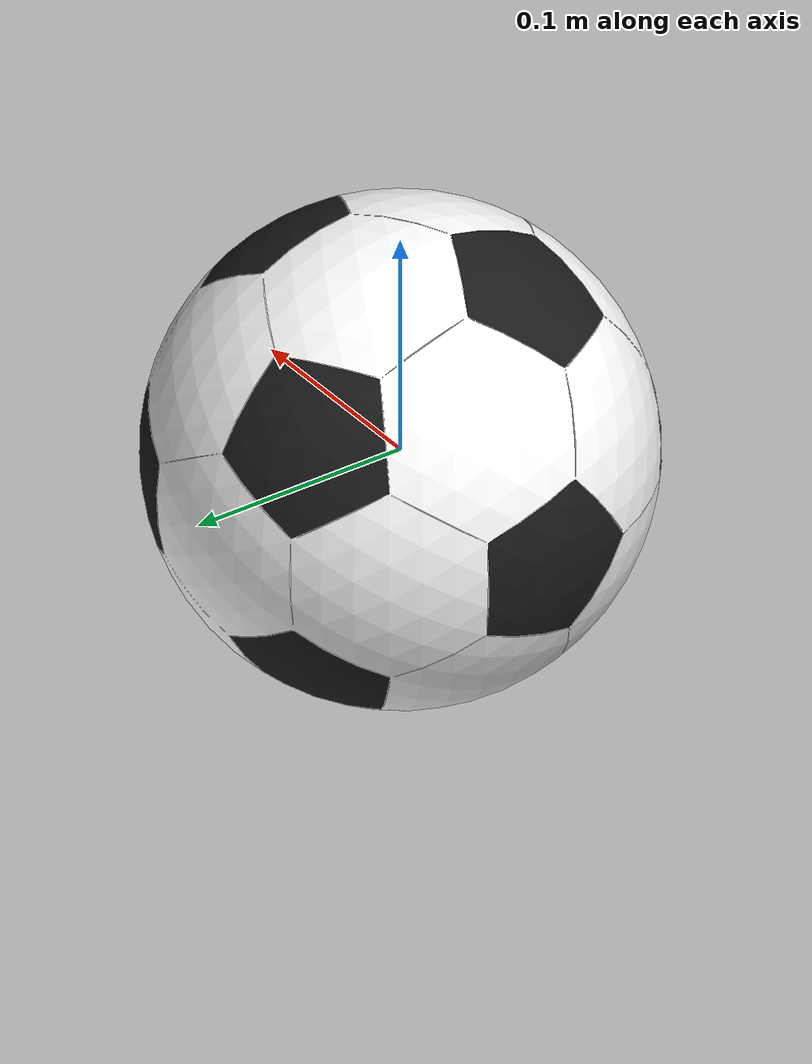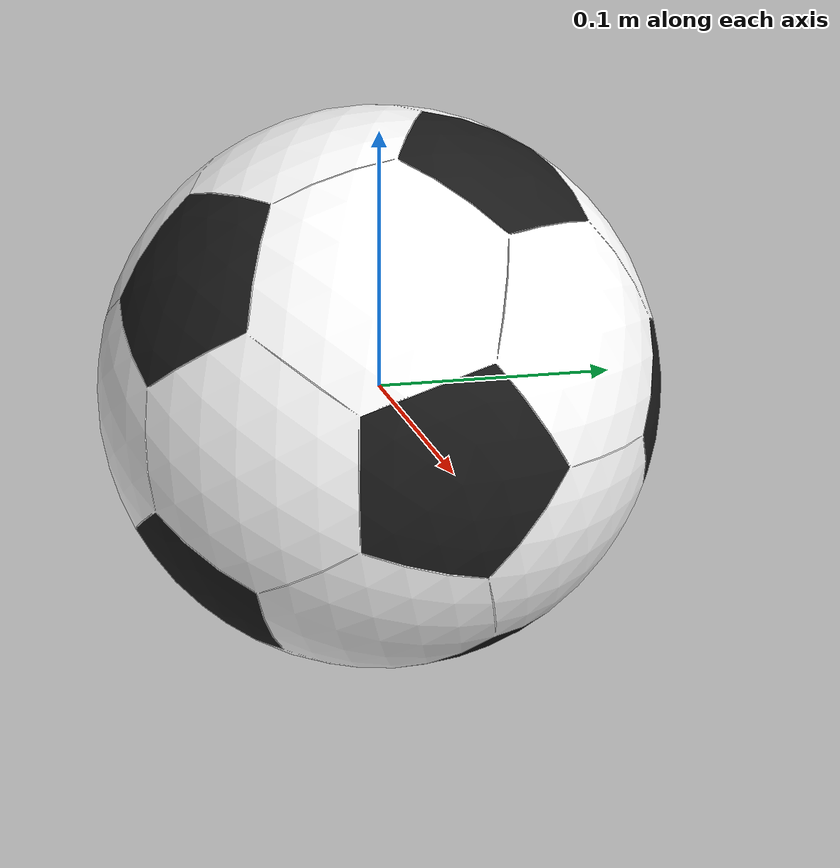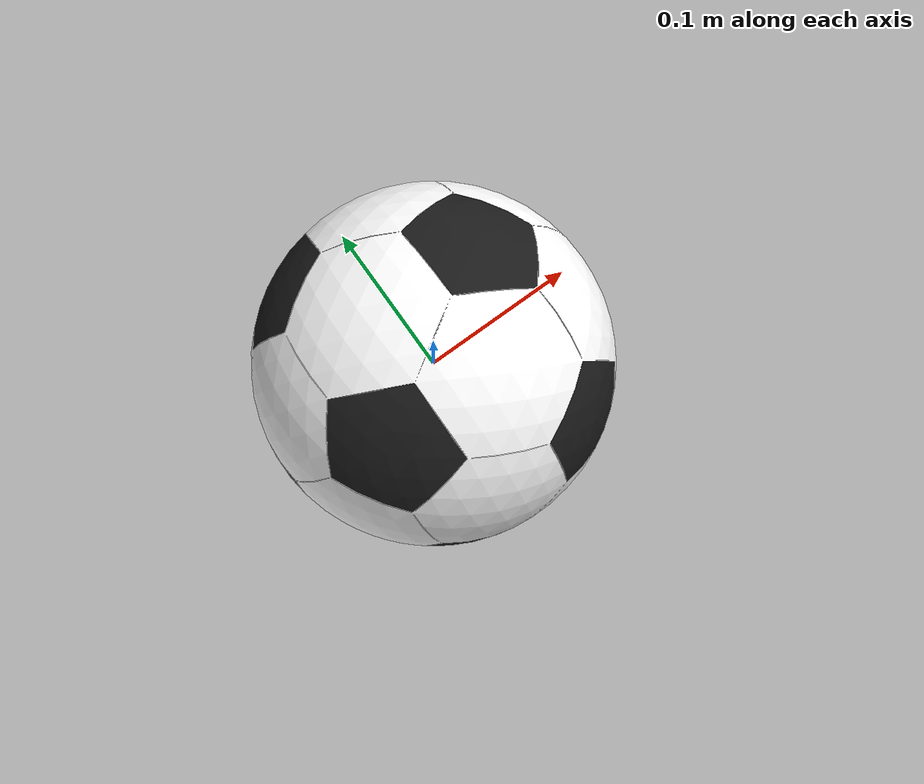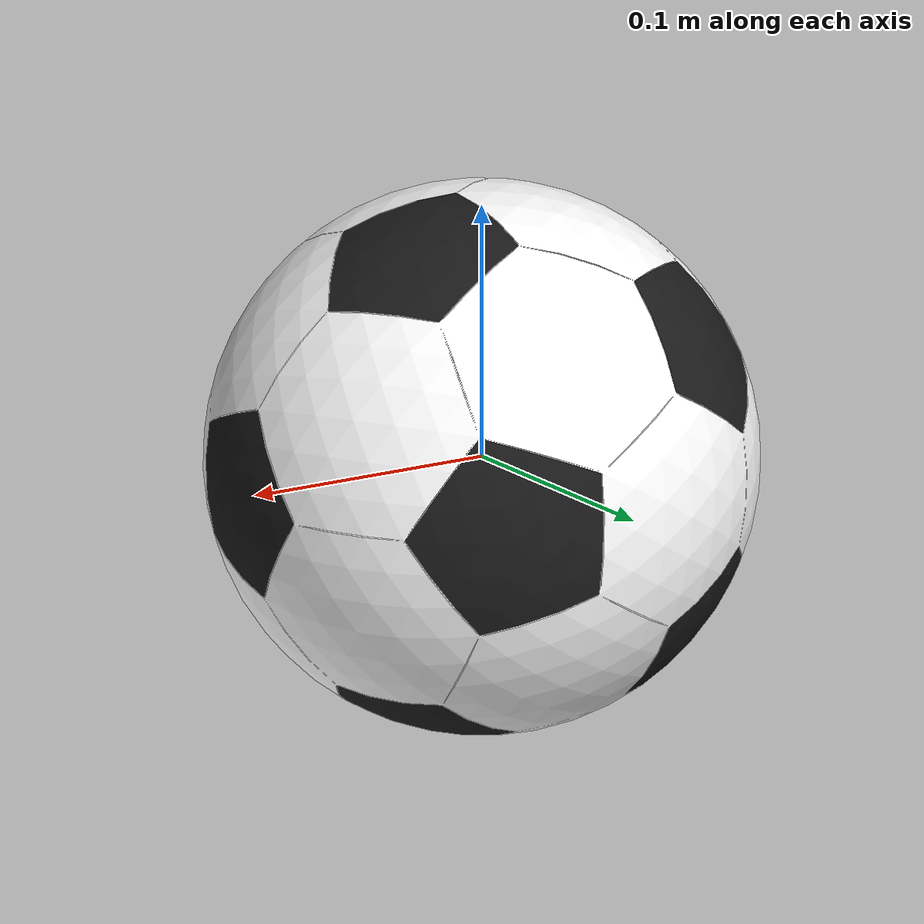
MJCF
<mujoco model="ball">
    <compiler angle="radian" meshdir="assets" autolimits="true" />

    <asset>
        <material name="ball_white" rgba="1.0 1.0 1.0 1.0" />
        <material name="ball_black" rgba="0.1 0.1 0.1 1.0" />
        <mesh name="ball_mesh_0" file="ball_size5_0.obj" />
        <mesh name="ball_mesh_1" file="ball_size5_1.obj" />
    </asset>

    <default>
        <default class="ball_visual">
            <geom contype="0" conaffinity="0" group="2" />
        </default>
        <default class="ball_collision">
            <geom contype="1" conaffinity="1" group="3" />
        </default>
    </default>

    <worldbody>
        <!-- Soccer ball (Size 5: diameter ~22cm, radius ~0.11m) -->
        <body name="ball" pos="0 0 0">
            <freejoint name="ball_joint" />

            <!-- Visual meshes -->
            <geom name="ball_visual_0" class="ball_visual" type="mesh" mesh="ball_mesh_0" material="ball_white" />
            <geom name="ball_visual_1" class="ball_visual" type="mesh" mesh="ball_mesh_1" material="ball_black" />

            <!-- Collision sphere (simplified) -->
            <geom name="ball_collision" class="ball_collision" type="sphere" size="0.11" mass="0.43" />

            <!-- Ball center site -->
            <site name="ball_site" pos="0 0 0" size="0.01" rgba="1 0 0 1" />
        </body>
    </worldbody>
</mujoco>
